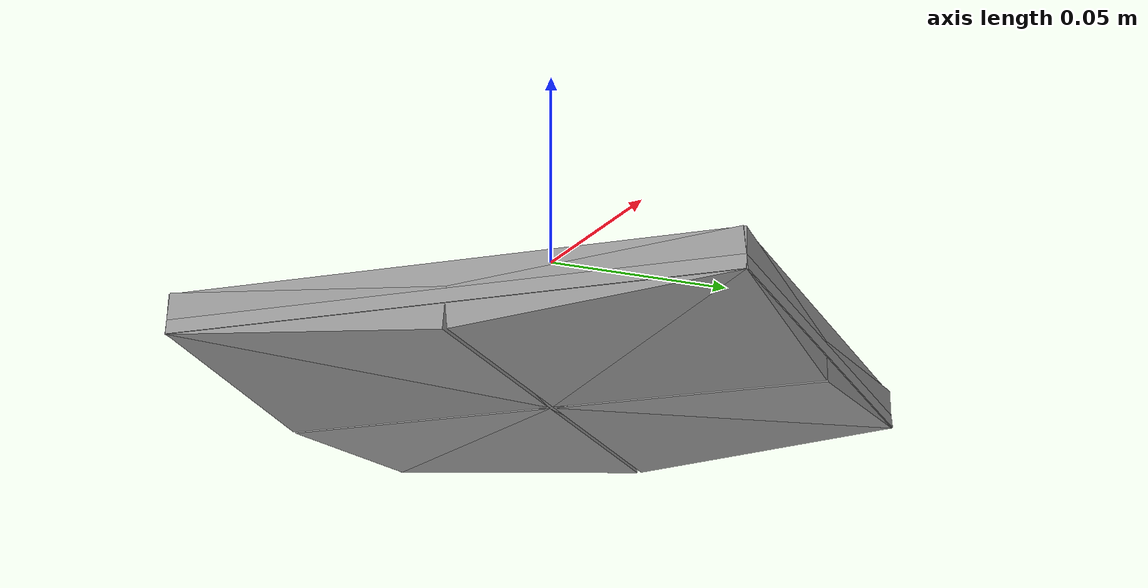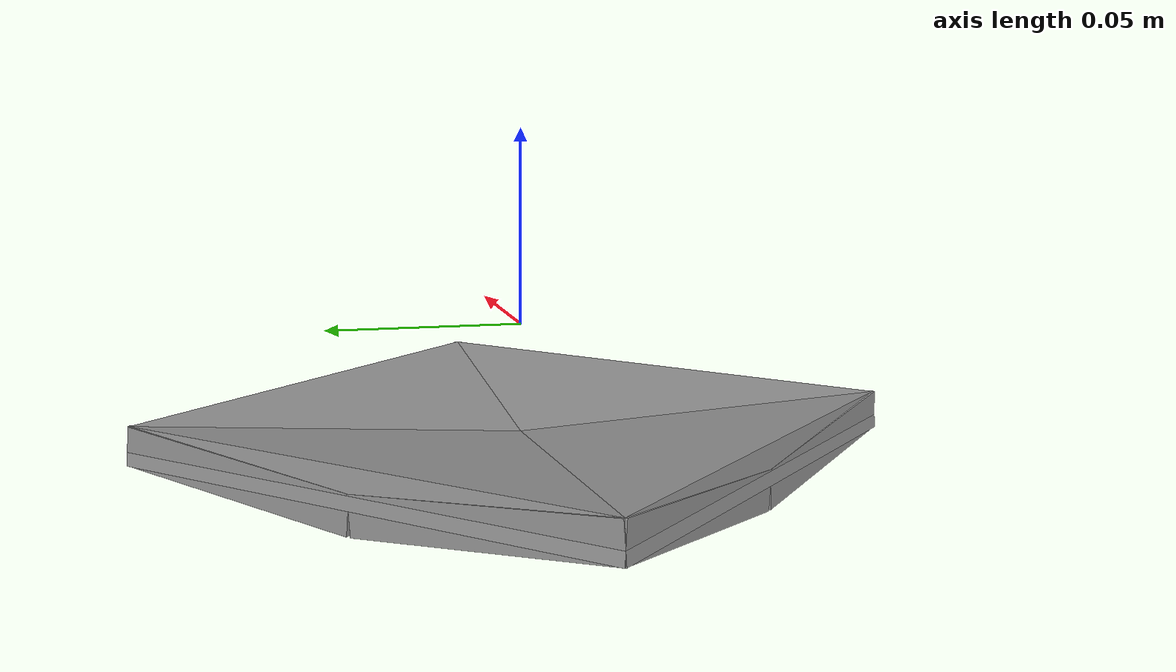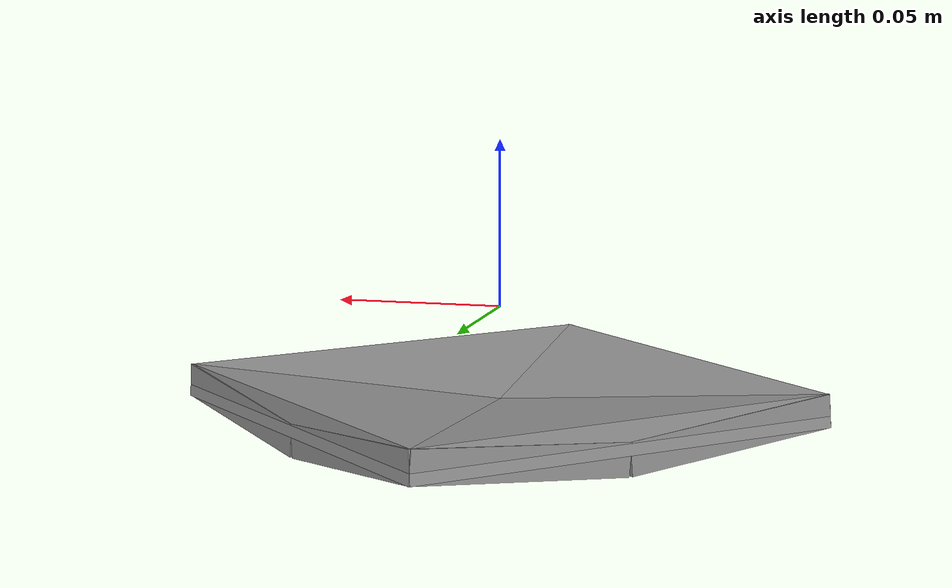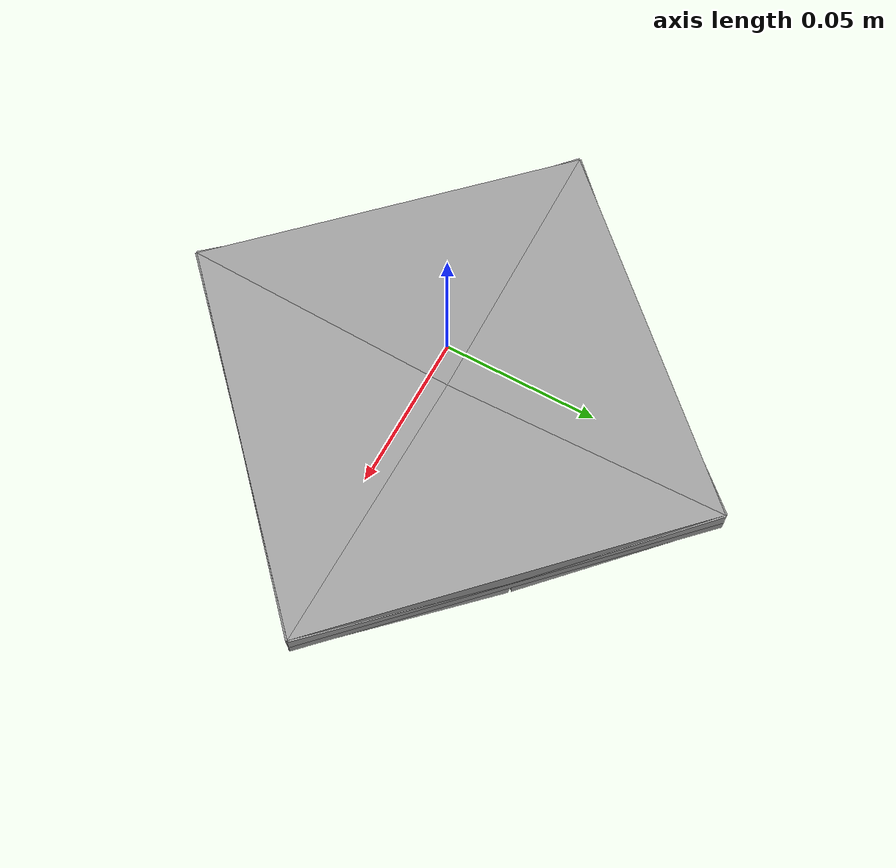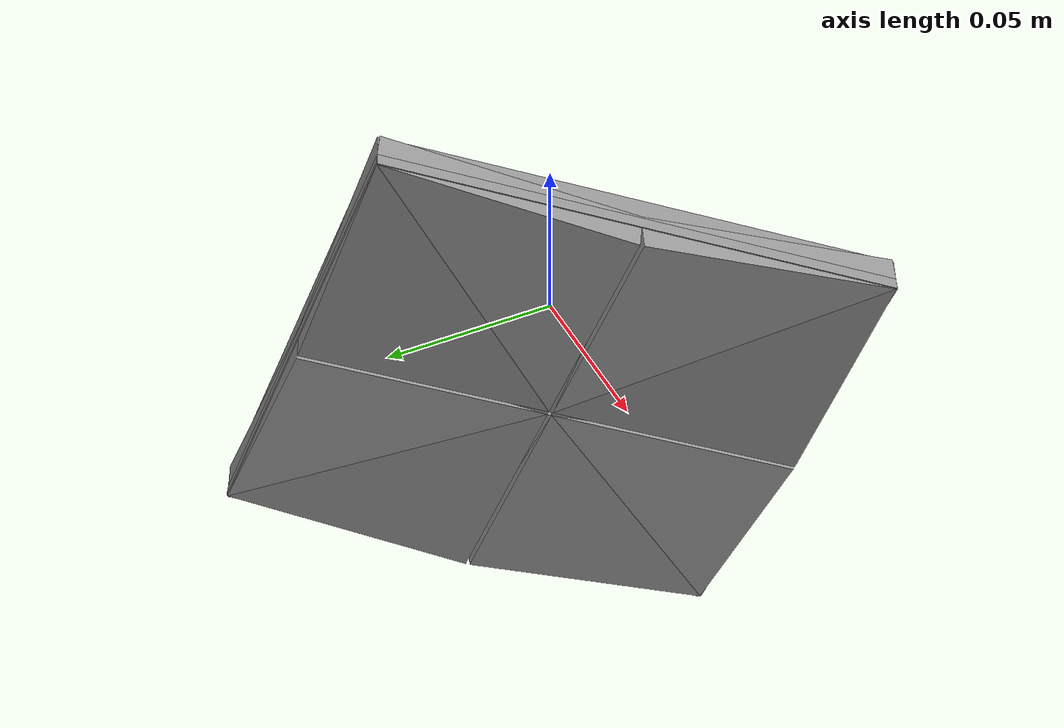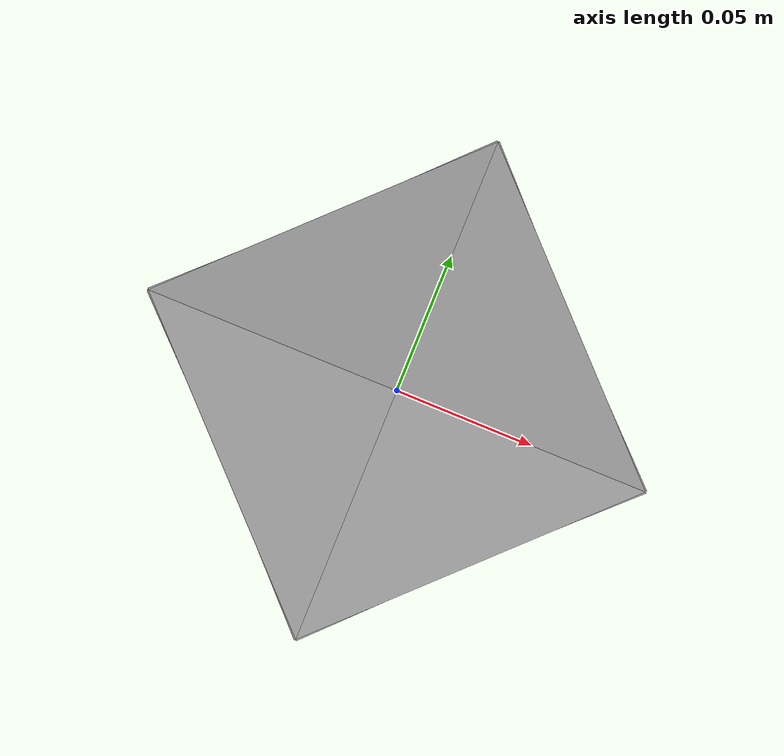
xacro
<?xml version="1.0" encoding="UTF-8"?>
<robot xmlns:xacro="http://ros.org/wiki/xacro" name="sphere_mount">

    <xacro:arg name="box_mass" default="1"/>
    <xacro:property name="mount_z_offset" value="-0.04"/>

    <!-- parametrization of sphere mount -->
    <xacro:property name="box_x" value="0.07"/>
    <xacro:property name="box_y" value="${2*box_x}"/>
    <xacro:property name="box_z" value="0.01"/>
    <xacro:property name="rotation_y" value="${-5*pi/180}"/>
    <xacro:property name="sqrt_2" value="1.414"/>

    <xacro:include filename="$(find description)/urdf/xacro_macros/inertia_tensors.xacro"/>

    <link name="world"/>

    <xacro:macro name="sphere_mount_link" params="id origin_x origin_y rotation_z">

        <joint name="sphere_mount_joint_${id}" type="fixed">
            <origin xyz="0 0 ${mount_z_offset}" rpy="0 0 ${pi/4}"/>
            <parent link="world"/>
            <child link="sphere_mount_${id}"/>
        </joint>
        <link name="sphere_mount_${id}">
            <visual>
                <origin xyz="${origin_x} ${origin_y} ${box_z}" rpy="0 ${rotation_y} ${rotation_z}" />
                <geometry>
                    <box size="${box_x} ${box_y} ${box_z}" />
                </geometry>
            </visual>
            <collision>
                <origin xyz="${origin_x} ${origin_y} ${box_z}" rpy="0 ${rotation_y} ${rotation_z}" />
                <geometry>
                    <box size="${box_x} ${box_y} ${box_z}" />
                </geometry>
            </collision>
            <inertial>
                <origin xyz="${origin_x} ${origin_y} ${box_z}" rpy="0 ${rotation_y} ${rotation_z}" />
                <mass value="$(arg box_mass)"/>
                <xacro:cuboid_inertia m="$(arg box_mass)" x="${box_x}" y="${box_y}" z="${box_z}"/>
            </inertial>
        </link>

        <gazebo reference="sphere_mount_${id}">
            <material>Gazebo/Grey</material>
        </gazebo>
    </xacro:macro>

    <xacro:sphere_mount_link id="1" origin_x="${box_x/2}" origin_y="${0}" rotation_z="${0}"/>
    <xacro:sphere_mount_link id="2" origin_x="${0}" origin_y="${box_y/4}" rotation_z="${pi/2}"/>
    <xacro:sphere_mount_link id="3" origin_x="${-box_x/2}" origin_y="${0}" rotation_z="${pi}"/>
    <xacro:sphere_mount_link id="4" origin_x="${0}" origin_y="${-box_y/4}" rotation_z="${3*pi/2}"/>

</robot>

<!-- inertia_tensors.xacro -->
<robot xmlns:xacro="http://www.ros.org/wiki/xacro">

  <!-- x = depth, y = width, z = height -->
  <xacro:macro name="cuboid_inertia" params="m x y z">
    <inertia ixx="${(1.0 / 12.0) * m * (y * y + z * z)}" ixy="0.0" ixz="0.0"
	     iyy="${(1.0 / 12.0) * m * (x * x + z * z)}" iyz="0.0"
	     izz="${(1.0 / 12.0) * m * (x * x + y * y)}"/>
  </xacro:macro>

  <xacro:macro name="cuboid_inertia_mod" params="m x y z scaling_factor">
    <inertia ixx="${(scaling_factor / 12.0) * m * (y * y + z * z)}" ixy="0.0" ixz="0.0"
	     iyy="${(scaling_factor / 12.0) * m * (x * x + z * z)}" iyz="0.0"
	     izz="${(scaling_factor / 12.0) * m * (x * x + y * y)}"/>
  </xacro:macro>

  <xacro:macro name="ellipsoid_inertia" params="m x y z">
    <inertia ixx="${(1.0 / 5.0) * m * (y * y + z * z)}" ixy="0.0" ixz="0.0"
	     iyy="${(1.0 / 5.0) * m * (x * x + z * z)}" iyz="0.0"
	     izz="${(1.0 / 5.0) * m * (x * x + y * y)}"/>
  </xacro:macro>

  <xacro:macro name="sphere_inertia" params="m r">
    <inertia ixx="${(2.0 / 5.0) * m * (r * r)}" ixy="0.0" ixz="0.0"
	     iyy="${(2.0 / 5.0) * m * (r * r)}" iyz="0.0"
	     izz="${(2.0 / 5.0) * m * (r * r)}"/>
  </xacro:macro>

  <xacro:macro name="sphere_inertia_mod" params="m r scaling_factor">
    <inertia ixx="${(scaling_factor * 2.0 / 5.0) * m * (r * r)}" ixy="0.0" ixz="0.0"
	     iyy="${(scaling_factor * 2.0 / 5.0) * m * (r * r)}" iyz="0.0"
	     izz="${(scaling_factor * 2.0 / 5.0) * m * (r * r)}"/>
  </xacro:macro>

  <!-- Assuming z-axis goes along height of cylinder -->
  <xacro:macro name="cylinder_inertia" params="m r h">
    <inertia ixx="${(1.0 / 12.0) * m * (3 * r * r + h * h)}" ixy="0.0" ixz="0.0"
	     iyy="${(1.0 / 12.0) * m * (3 * r * r + h * h)}" iyz="0.0"
	     izz="${(1.0 / 2.0) * m * (r * r)}"/>
  </xacro:macro>

  <xacro:macro name="cylinder_inertia_mod" params="m r h scaling_factor">
    <inertia ixx="${(scaling_factor / 12.0) * m * (3 * r * r + h * h)}" ixy="0.0" ixz="0.0"
	     iyy="${(scaling_factor / 12.0) * m * (3 * r * r + h * h)}" iyz="0.0"
	     izz="${(scaling_factor / 2.0) * m * (r * r)}"/>
  </xacro:macro>

</robot>
